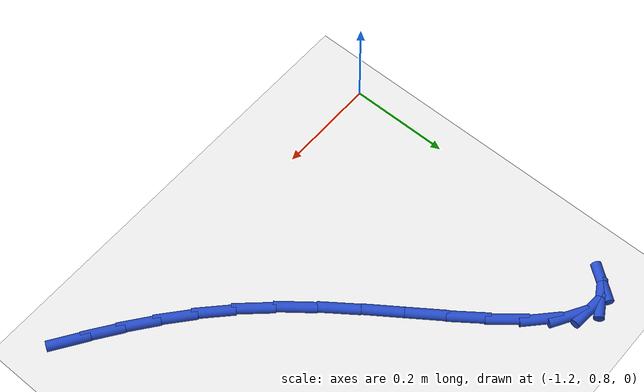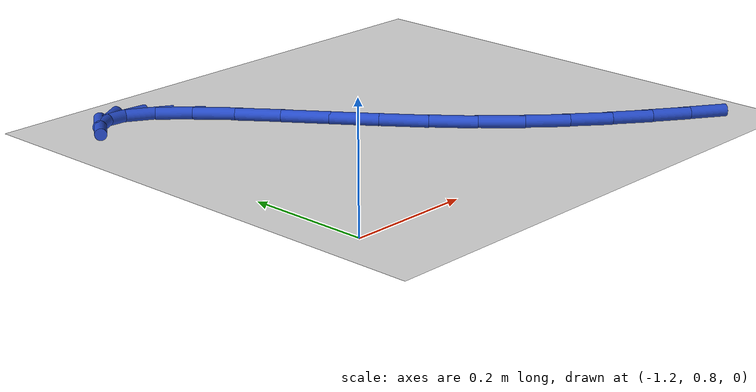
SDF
<sdf version="1.6">
 <world name="default">
  <model name="ground_plane">
   <static>1</static>
   <link name="link">
    <collision name="collision">
     <geometry><plane><normal>0 0 1</normal><size>100 100</size></plane></geometry>
     <surface><friction><ode><mu>100</mu><mu2>50</mu2></ode></friction></surface>
    </collision>
    <visual name="visual">
     <cast_shadows>0</cast_shadows>
     <geometry><plane><normal>0 0 1</normal><size>100 100</size></plane></geometry>
     <material>
      <script><uri>file://media/materials/scripts/gazebo.material</uri><name>Gazebo/WhiteGlow</name></script>
     </material>
    </visual>
   </link>
  </model>
  <model name="line">
   <link name="link_16">
    <pose>-0.4585367077555467 0.7512043838332658 0.01 0 1.57 -0.5927362882087166</pose>
    <collision name="collision">
     <geometry><cylinder><radius>0.01</radius><length>0.08</length></cylinder></geometry>
    </collision>
    <visual name="visual">
     <material>
      <script><name>Gazebo/Blue</name><uri>file://media/materials/scripts/gazebo.material</uri></script>
     </material>
     <geometry><cylinder><radius>0.01</radius><length>0.08</length></cylinder></geometry>
    </visual>
   </link>
   <link name="link_17">
    <pose>-0.5098576790052237 0.7857703876314553 0.01 0 1.57 -0.6206903431015507</pose>
    <collision name="collision">
     <geometry><cylinder><radius>0.01</radius><length>0.08</length></cylinder></geometry>
    </collision>
    <visual name="visual">
     <material>
      <script><name>Gazebo/Blue</name><uri>file://media/materials/scripts/gazebo.material</uri></script>
     </material>
     <geometry><cylinder><radius>0.01</radius><length>0.08</length></cylinder></geometry>
    </visual>
   </link>
   <link name="link_18">
    <pose>-0.5617194094084673 0.8228490203770468 0.01 0 1.57 -0.660614372121091</pose>
    <collision name="collision">
     <geometry><cylinder><radius>0.01</radius><length>0.08</length></cylinder></geometry>
    </collision>
    <visual name="visual">
     <material>
      <script><name>Gazebo/Blue</name><uri>file://media/materials/scripts/gazebo.material</uri></script>
     </material>
     <geometry><cylinder><radius>0.01</radius><length>0.08</length></cylinder></geometry>
    </visual>
   </link>
   <link name="link_19">
    <pose>-0.613713940188014 0.8632534406760802 0.01 0 1.57 -0.7109897523159898</pose>
    <collision name="collision">
     <geometry><cylinder><radius>0.01</radius><length>0.08</length></cylinder></geometry>
    </collision>
    <visual name="visual">
     <material>
      <script><name>Gazebo/Blue</name><uri>file://media/materials/scripts/gazebo.material</uri></script>
     </material>
     <geometry><cylinder><radius>0.01</radius><length>0.08</length></cylinder></geometry>
    </visual>
   </link>
   <link name="link_20">
    <pose>-0.6654333125666001 0.9077968071345953 0.01 0 1.57 -0.7700730177310487</pose>
    <collision name="collision">
     <geometry><cylinder><radius>0.01</radius><length>0.08</length></cylinder></geometry>
    </collision>
    <visual name="visual">
     <material>
      <script><name>Gazebo/Blue</name><uri>file://media/materials/scripts/gazebo.material</uri></script>
     </material>
     <geometry><cylinder><radius>0.01</radius><length>0.08</length></cylinder></geometry>
    </visual>
   </link>
   <link name="link_21">
    <pose>-0.7164695677669619 0.9572922783586323 0.01 0 1.57 -0.8357815783060377</pose>
    <collision name="collision">
     <geometry><cylinder><radius>0.01</radius><length>0.08</length></cylinder></geometry>
    </collision>
    <visual name="visual">
     <material>
      <script><name>Gazebo/Blue</name><uri>file://media/materials/scripts/gazebo.material</uri></script>
     </material>
     <geometry><cylinder><radius>0.01</radius><length>0.08</length></cylinder></geometry>
    </visual>
   </link>
   <link name="link_22">
    <pose>-0.7664154222909195 1.0125427735676424 0.01 0 1.57 -0.8959147964144962</pose>
    <collision name="collision">
     <geometry><cylinder><radius>0.01</radius><length>0.08</length></cylinder></geometry>
    </collision>
    <visual name="visual">
     <material>
      <script><name>Gazebo/Blue</name><uri>file://media/materials/scripts/gazebo.material</uri></script>
     </material>
     <geometry><cylinder><radius>0.01</radius><length>0.08</length></cylinder></geometry>
    </visual>
   </link>
   <link name="link_23">
    <pose>-0.8149407076807607 1.0731819017953073 0.01 0 1.57 -0.933868837744069</pose>
    <collision name="collision">
     <geometry><cylinder><radius>0.01</radius><length>0.08</length></cylinder></geometry>
    </collision>
    <visual name="visual">
     <material>
      <script><name>Gazebo/Blue</name><uri>file://media/materials/scripts/gazebo.material</uri></script>
     </material>
     <geometry><cylinder><radius>0.01</radius><length>0.08</length></cylinder></geometry>
    </visual>
   </link>
   <link name="link_24">
    <pose>-0.8618626150724126 1.1366088302236312 0.01 0 1.57 -0.9516595841006837</pose>
    <collision name="collision">
     <geometry><cylinder><radius>0.01</radius><length>0.08</length></cylinder></geometry>
    </collision>
    <visual name="visual">
     <material>
      <script><name>Gazebo/Blue</name><uri>file://media/materials/scripts/gazebo.material</uri></script>
     </material>
     <geometry><cylinder><radius>0.01</radius><length>0.08</length></cylinder></geometry>
    </visual>
   </link>
   <link name="link_25">
    <pose>-0.9070149348090659 1.1999710290632895 0.01 0 1.57 -0.9500916453719391</pose>
    <collision name="collision">
     <geometry><cylinder><radius>0.01</radius><length>0.08</length></cylinder></geometry>
    </collision>
    <visual name="visual">
     <material>
      <script><name>Gazebo/Blue</name><uri>file://media/materials/scripts/gazebo.material</uri></script>
     </material>
     <geometry><cylinder><radius>0.01</radius><length>0.08</length></cylinder></geometry>
    </visual>
   </link>
   <link name="link_26">
    <pose>-0.9502314572339122 1.2604159685249576 0.01 0 1.57 -0.9260304376676002</pose>
    <collision name="collision">
     <geometry><cylinder><radius>0.01</radius><length>0.08</length></cylinder></geometry>
    </collision>
    <visual name="visual">
     <material>
      <script><name>Gazebo/Blue</name><uri>file://media/materials/scripts/gazebo.material</uri></script>
     </material>
     <geometry><cylinder><radius>0.01</radius><length>0.08</length></cylinder></geometry>
    </visual>
   </link>
   <link name="link_27">
    <pose>-0.9913459726901426 1.315091118819312 0.01 0 1.57 -0.8700786396120581</pose>
    <collision name="collision">
     <geometry><cylinder><radius>0.01</radius><length>0.08</length></cylinder></geometry>
    </collision>
    <visual name="visual">
     <material>
      <script><name>Gazebo/Blue</name><uri>file://media/materials/scripts/gazebo.material</uri></script>
     </material>
     <geometry><cylinder><radius>0.01</radius><length>0.08</length></cylinder></geometry>
    </visual>
   </link>
   <link name="link_28">
    <pose>-1.0301922715209482 1.3611439501570284 0.01 0 1.57 -0.7595707804937958</pose>
    <collision name="collision">
     <geometry><cylinder><radius>0.01</radius><length>0.08</length></cylinder></geometry>
    </collision>
    <visual name="visual">
     <material>
      <script><name>Gazebo/Blue</name><uri>file://media/materials/scripts/gazebo.material</uri></script>
     </material>
     <geometry><cylinder><radius>0.01</radius><length>0.08</length></cylinder></geometry>
    </visual>
   </link>
   <link name="link_29">
    <pose>-1.0666041440695202 1.3957219327487833 0.01 0 1.57 -0.5396332373346727</pose>
    <collision name="collision">
     <geometry><cylinder><radius>0.01</radius><length>0.08</length></cylinder></geometry>
    </collision>
    <visual name="visual">
     <material>
      <script><name>Gazebo/Blue</name><uri>file://media/materials/scripts/gazebo.material</uri></script>
     </material>
     <geometry><cylinder><radius>0.01</radius><length>0.08</length></cylinder></geometry>
    </visual>
   </link>
   <link name="link_30">
    <pose>-1.1004153806790495 1.415972536805251 0.01 0 1.57 -0.09859235952588913</pose>
    <collision name="collision">
     <geometry><cylinder><radius>0.01</radius><length>0.08</length></cylinder></geometry>
    </collision>
    <visual name="visual">
     <material>
      <script><name>Gazebo/Blue</name><uri>file://media/materials/scripts/gazebo.material</uri></script>
     </material>
     <geometry><cylinder><radius>0.01</radius><length>0.08</length></cylinder></geometry>
    </visual>
   </link>
   <link name="link_31">
    <pose>-1.1314597716927273 1.4190432325371085 0.01 0 1.57 0.5245717462017042</pose>
    <collision name="collision">
     <geometry><cylinder><radius>0.01</radius><length>0.08</length></cylinder></geometry>
    </collision>
    <visual name="visual">
     <material>
      <script><name>Gazebo/Blue</name><uri>file://media/materials/scripts/gazebo.material</uri></script>
     </material>
     <geometry><cylinder><radius>0.01</radius><length>0.08</length></cylinder></geometry>
    </visual>
   </link>
   <link name="link_32">
    <pose>-1.1596832021872432 1.40271179266181 0.01 0 1.57 0.9131498937410488</pose>
    <collision name="collision">
     <geometry><cylinder><radius>0.01</radius><length>0.08</length></cylinder></geometry>
    </collision>
    <visual name="visual">
     <material>
      <script><name>Gazebo/Blue</name><uri>file://media/materials/scripts/gazebo.material</uri></script>
     </material>
     <geometry><cylinder><radius>0.01</radius><length>0.08</length></cylinder></geometry>
    </visual>
   </link>
  </model>
 </world>
</sdf>
